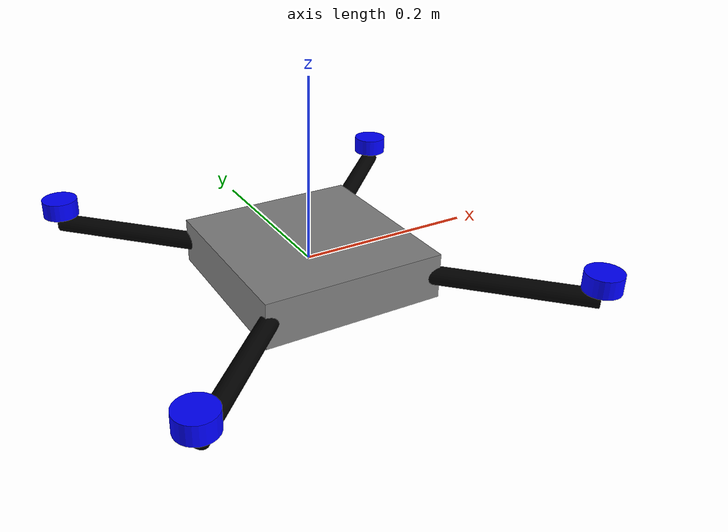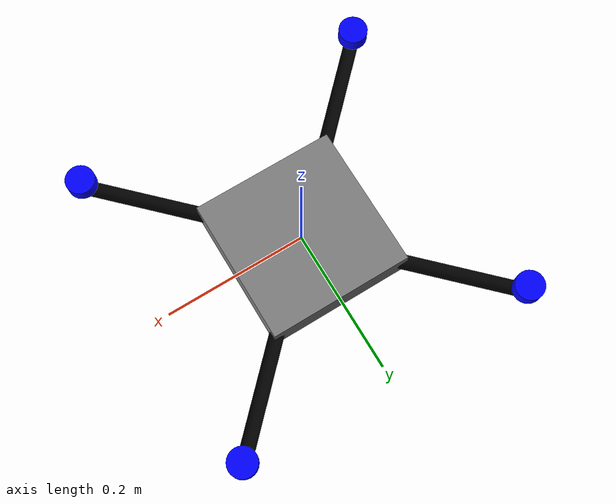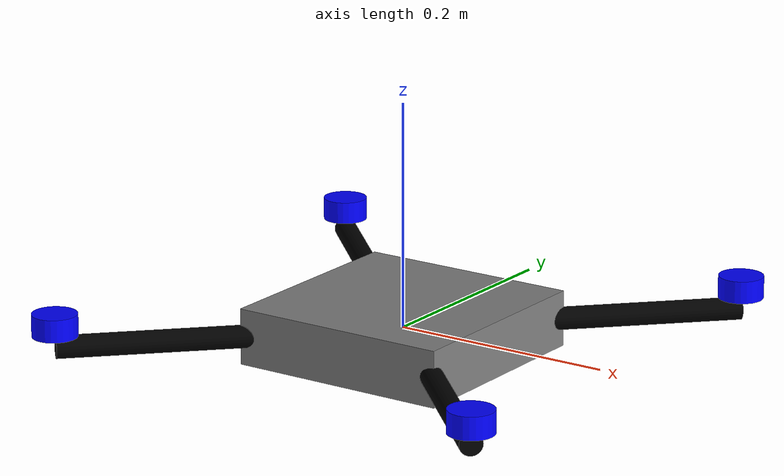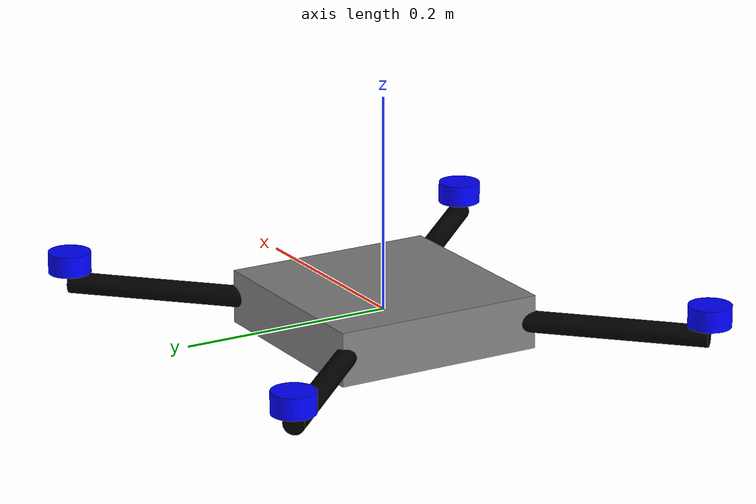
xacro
<?xml version="1.0"?>
<robot name="my_quadracopter" xmlns:xacro="http://www.ros.org/wiki/xacro">

  <!-- Materiales -->
  <material name="gray"><color rgba="0.5 0.5 0.5 1.0"/></material>
  <material name="black"><color rgba="0.0 0.0 0.0 1.0"/></material>
  <material name="blue"><color rgba="0.0 0.0 1.0 1.0"/></material>

  <!-- Cuerpo central -->
  <link name="base_link">
    <visual>
      <origin xyz="0 0 0" rpy="0 0 0"/>
      <geometry><box size="0.2 0.2 0.05"/></geometry>
      <material name="gray"/>
    </visual>
    <collision>
      <origin xyz="0 0 0" rpy="0 0 0"/>
      <geometry><box size="0.2 0.2 0.05"/></geometry>
    </collision>
    <inertial>
      <mass value="1.0"/>
      <origin xyz="0 0 0" rpy="0 0 0"/>
      <inertia ixx="0.001" iyy="0.001" izz="0.001" ixy="0" ixz="0" iyz="0"/>
    </inertial>
  </link>

  <!-- Macro de brazo con motor -->
  <xacro:macro name="arm_with_motor" params="name parent yaw arm_length">
    <xacro:property name="ox" value="${0.5 * arm_length * cos(yaw)}"/>
    <xacro:property name="oy" value="${0.5 * arm_length * sin(yaw)}"/>
    <xacro:property name="mx" value="${arm_length * cos(yaw)}"/>
    <xacro:property name="my" value="${arm_length * sin(yaw)}"/>

    <link name="${name}_arm">
      <visual>
        <origin xyz="${ox} ${oy} 0" rpy="${pi/2} 0 ${-1 * yaw}"/>
        <geometry><cylinder length="${arm_length}" radius="0.01"/></geometry>
        <material name="black"/>
      </visual>
      <collision>
        <origin xyz="${ox} ${oy} 0" rpy="${pi/2} 0 ${-1 * yaw}"/>
        <geometry><cylinder length="${arm_length}" radius="0.01"/></geometry>
      </collision>
      <inertial>
        <mass value="0.05"/>
        <origin xyz="0 0 0" rpy="0 0 0"/>
        <inertia ixx="1e-5" iyy="1e-5" izz="1e-5" ixy="0" ixz="0" iyz="0"/>
      </inertial>
    </link>

    <joint name="joint_${name}_arm" type="fixed">
      <parent link="${parent}"/>
      <child link="${name}_arm"/>
      <origin xyz="${ox} ${oy} 0" rpy="0 0 0"/>
    </joint>

    <link name="${name}_motor">
      <visual>
        <origin xyz="0 0 0" rpy="0 0 0"/>
        <geometry><cylinder length="0.02" radius="0.02"/></geometry>
        <material name="blue"/>
      </visual>
      <collision>
        <origin xyz="0 0 0" rpy="0 0 0"/>
        <geometry><cylinder length="0.02" radius="0.02"/></geometry>
      </collision>
      <inertial>
        <mass value="0.05"/>
        <origin xyz="0 0 0" rpy="0 0 0"/>
        <inertia ixx="1e-5" iyy="1e-5" izz="1e-5" ixy="0" ixz="0" iyz="0"/>
      </inertial>
    </link>

    <joint name="joint_${name}_motor" type="continuous">
      <parent link="${name}_arm"/>
      <child link="${name}_motor"/>
      <origin xyz="${mx} ${my} 0.02" rpy="0 0 0"/>
      <axis xyz="0 0 1"/>
      <dynamics damping="0.01" friction="1.5"/>
    </joint>
  </xacro:macro>

  <!-- Cuatro brazos con motores -->
  <xacro:arm_with_motor name="front_left"  parent="base_link" yaw="0.7854"  arm_length="0.2"/>
  <xacro:arm_with_motor name="front_right" parent="base_link" yaw="-0.7854" arm_length="0.2"/>
  <xacro:arm_with_motor name="back_left"   parent="base_link" yaw="2.3562"  arm_length="0.2"/>
  <xacro:arm_with_motor name="back_right"  parent="base_link" yaw="-2.3562" arm_length="0.2"/>

  <gazebo>
    <plugin name="wrenches_plugin" filename="libwrenches_plugin.so">
      <link_name_motor1>front_left_motor</link_name_motor1>
      <topic_motor1>__NS__/fl_motor</topic_motor1>

      <link_name_motor2>front_right_motor</link_name_motor2>
      <topic_motor2>__NS__/fr_motor</topic_motor2>

      <link_name_motor3>back_left_motor</link_name_motor3>
      <topic_motor3>__NS__/bl_motor</topic_motor3>

      <link_name_motor4>back_right_motor</link_name_motor4>
      <topic_motor4>__NS__/br_motor</topic_motor4>
    </plugin>

    <plugin name="imu_plugin" filename="libimu_plugin.so">
      <link_name_imu>base_link</link_name_imu>
      <frame_id_imu>__FRAME_PREFIX___base_link</frame_id_imu>
      <topic_imu>__NS__/sensor/imu</topic_imu>            <!-- relativo -->
      <update_rate_imu>200</update_rate_imu>
      <remove_gravity_imu>false</remove_gravity_imu>
      <ros>
        <namespace>__NS__</namespace>
      </ros>
    </plugin>

    <!-- Barómetro -->
    <plugin name="barometer_plugin" filename="libbarometer_plugin.so">
      <link_name_baro>base_link</link_name_baro>
      <frame_id_baro>__FRAME_PREFIX___base_link</frame_id_baro>
      <topic_baro>__NS__/sensor/baro</topic_baro>     <!-- relativo -->
      <update_rate_baro>50</update_rate_baro>

      <ref_altitude_baro>0.0</ref_altitude_baro>
      <p0_baro>101325.0</p0_baro>
      <T_baro>288.15</T_baro>

      <ros>
        <namespace>__NS__</namespace>
      </ros>
    </plugin>

    <!-- Magnetómetro -->
    <plugin name="magnetometer_plugin" filename="libmagnetometer_plugin.so">
      <link_name_mag>base_link</link_name_mag>
      <frame_id_mag>__FRAME_PREFIX___base_link</frame_id_mag>
      <topic_mag>__NS__/sensor/mag</topic_mag>          <!-- relativo -->
      <update_rate_mag>100</update_rate_mag>

      <Bx_world>2.0e-5</Bx_world>
      <By_world>0.0</By_world>
      <Bz_world>-4.0e-5</Bz_world>

      <ros>
        <namespace>__NS__</namespace>
      </ros>
    </plugin>

    <!-- Ground Truth -->
    <plugin name="ground_truth_plugin" filename="libground_truth_plugin.so">
      <link_name_gt>base_link</link_name_gt>
      <frame_id_gt>world</frame_id_gt>
      <topic_gt>__NS__/ground_truth/pose</topic_gt>    <!-- relativo -->
      <update_rate_gt>100</update_rate_gt>
      <param_ns>ground_truth</param_ns>
      <ros>
        <namespace>__NS__</namespace>
      </ros>
    </plugin>
  </gazebo>

</robot>
